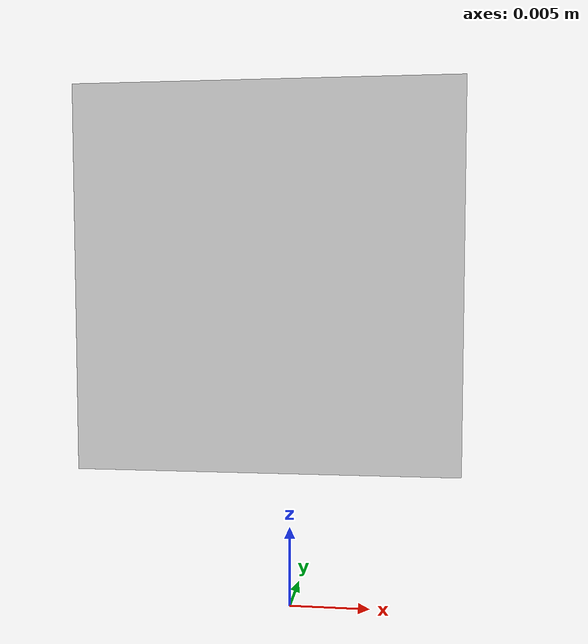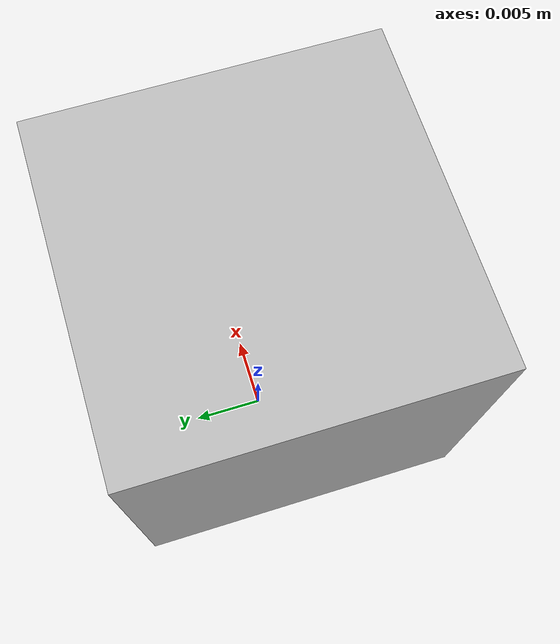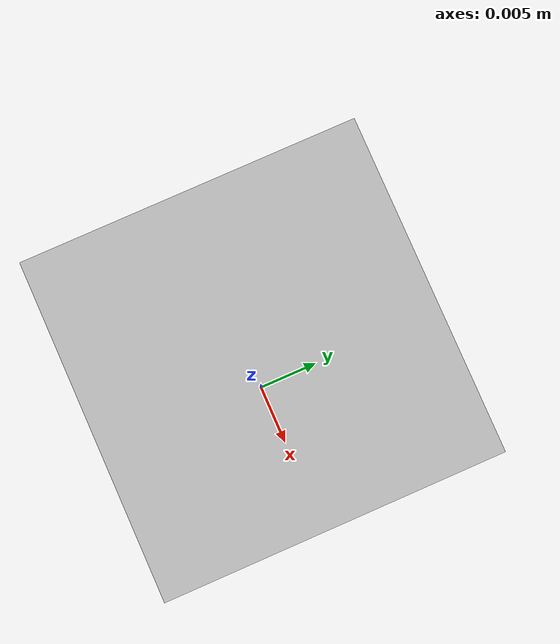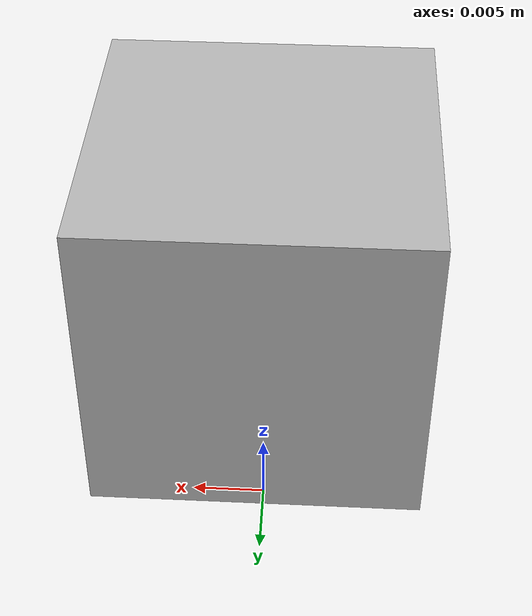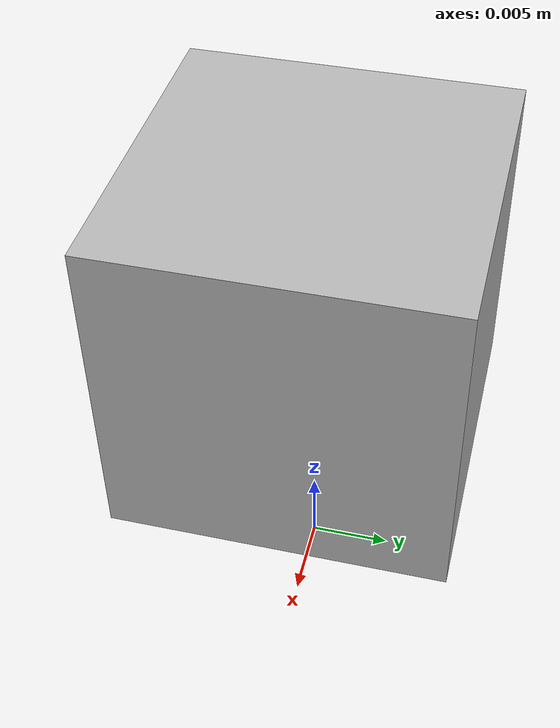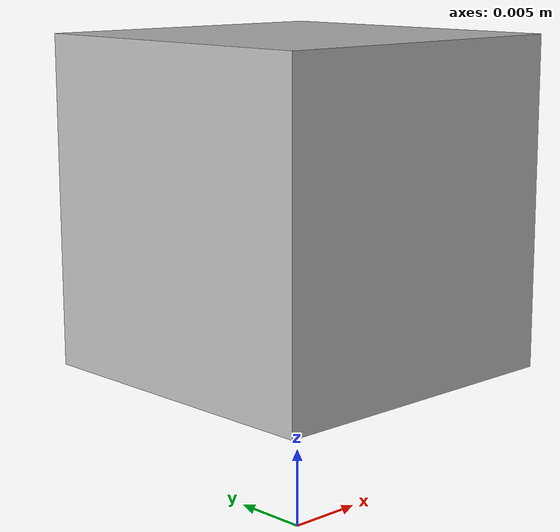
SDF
<?xml version="1.0" ?>
<sdf version="1.5">
  <model name="camera">
    <link name="base">
      <pose>0 0 0.0204 0 0 0</pose>
      <inertial>
        <mass>0.19</mass>
        <inertia>
          <ixx>0.001087473</ixx>
          <iyy>0.001087473</iyy>
          <izz>0.001092437</izz>
          <ixy>0</ixy>
          <ixz>0</ixz>
          <iyz>0</iyz>
        </inertia>
      </inertial>
      <collision name="base_collision">
        <geometry>
          <box>
             <size> .02 .02 .02 </size>
          </box>
        </geometry>
      </collision>
    <visual name="base_visual">
      <geometry>
        <box>
          <size> .02 .02 .02 </size>
        </box>
      </geometry>
    </visual>

      <sensor type="camera" name="downward_camera">
       <update_rate>60.0</update_rate>
      <camera name="head">
        <horizontal_fov>1.571</horizontal_fov>
        <image>
          <width>640</width>
          <height>480</height>
          <format>R8G8B8</format>
        </image>
        <clip>
          <near>0.02</near>
          <far>300</far>
        </clip>
        <noise>
          <type>gaussian</type>
          <!-- Noise is sampled independently per pixel on each frame.
               That pixel's noise value is added to each of its color
               channels, which at that point lie in the range [0,1]. -->
          <mean>0.0</mean>
          <stddev>0.007</stddev>
        </noise>
      </camera>
      <plugin name="camera_controller" filename="libgazebo_ros_camera.so">
        <alwaysOn>true</alwaysOn>
        <updateRate>0.0</updateRate>
        <cameraName>camera1</cameraName>
        <imageTopicName>image_raw</imageTopicName>
        <cameraInfoTopicName>camera_info</cameraInfoTopicName>
        <frameName>camera_link</frameName>
        <hackBaseline>0.07</hackBaseline>
        <distortionK1>0.0</distortionK1>
        <distortionK2>0.0</distortionK2>
        <distortionK3>0.0</distortionK3>
        <distortionT1>0.0</distortionT1>
        <distortionT2>0.0</distortionT2>
      </plugin>
    </sensor>
    </link>

  </model>
</sdf>
